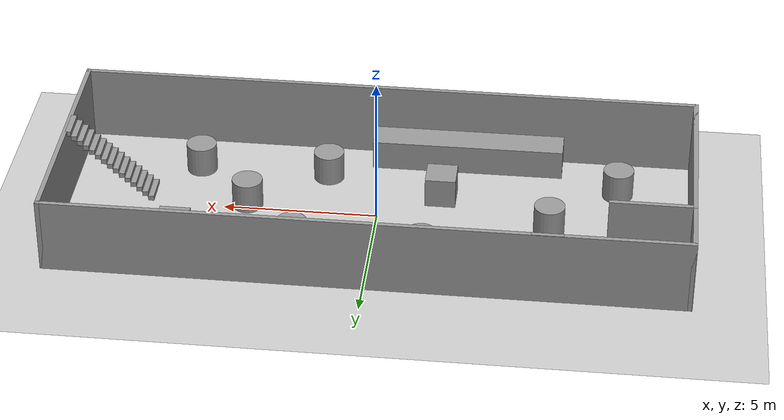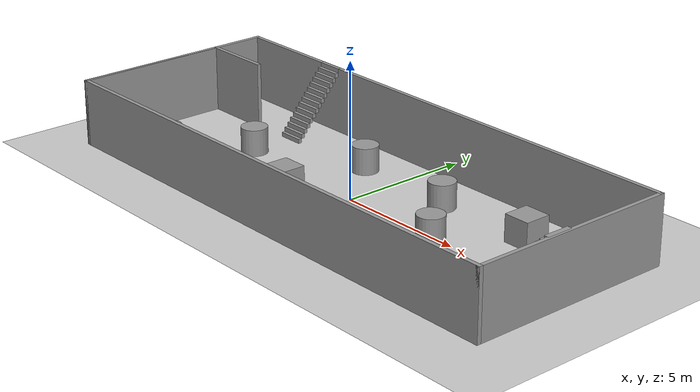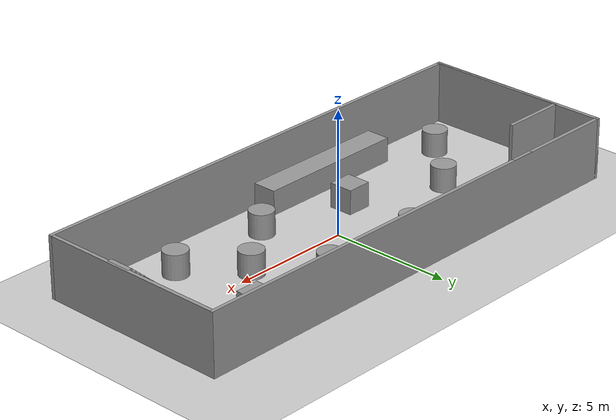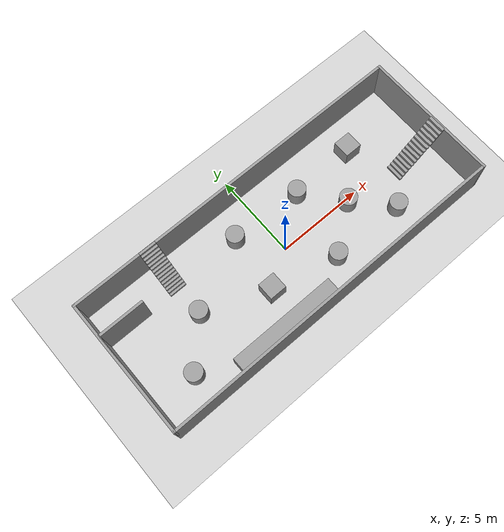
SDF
<sdf version="1.6">
 <world name="default">
  <light name="sun" type="directional">
   <pose>0 0 10 0 -0 0</pose>
   <diffuse>0.8 0.8 0.8 1</diffuse>
   <specular>0.2 0.2 0.2 1</specular>
   <attenuation>
    <range>1000</range>
    <constant>0.9</constant>
    <linear>0.01</linear>
    <quadratic>0.001</quadratic>
   </attenuation>
   <direction>-0.5 0.1 -0.9</direction>
  </light>
  <model name="ground_plane">
   <static>1</static>
   <link name="link">
    <collision name="collision">
     <geometry><plane><normal>0 0 1</normal><size>100 100</size></plane></geometry>
     <surface>
      <contact><collide_bitmask>65535</collide_bitmask></contact>
      <friction><ode><mu>100</mu><mu2>50</mu2></ode></friction>
     </surface>
    </collision>
    <visual name="visual">
     <cast_shadows>0</cast_shadows>
     <geometry><plane><normal>0 0 1</normal><size>100 100</size></plane></geometry>
     <material>
      <script><uri>file://media/materials/scripts/gazebo.material</uri><name>Gazebo/Grey</name></script>
     </material>
    </visual>
   </link>
  </model>
  <gravity>0 0 -9.8</gravity>
  <magnetic_field>6e-06 2.3e-05 -4.2e-05</magnetic_field>
  <atmosphere type="adiabatic"/>
  <physics name="default_physics" default="0" type="ode">
   <max_step_size>0.001</max_step_size>
   <real_time_factor>1</real_time_factor>
   <real_time_update_rate>1000</real_time_update_rate>
  </physics>
  <scene><ambient>0.4 0.4 0.4 1</ambient><background>0.7 0.7 0.7 1</background><shadows>1</shadows></scene>
  <spherical_coordinates>
   <surface_model>EARTH_WGS84</surface_model>
   <latitude_deg>0</latitude_deg>
   <longitude_deg>0</longitude_deg>
   <elevation>0</elevation>
   <heading_deg>0</heading_deg>
  </spherical_coordinates>
  <model name="Untitled3">
   <pose>0.002284 -0.007281 0 0 -0 0</pose>
   <link name="Stairs_0">
    <visual name="Stairs_0_Visual_0">
     <pose>-5.68776 2.00239 0.083333 0 -0 -3.14159</pose>
     <geometry><box><size>1 0.136788 0.166667</size></box></geometry>
     <material>
      <script><uri>file://media/materials/scripts/gazebo.material</uri><name>Gazebo/Grey</name></script>
      <ambient>1 1 1 1</ambient>
     </material>
     <meta><layer>0</layer></meta>
    </visual>
    <collision name="Stairs_0_Collision_0">
     <geometry><box><size>1 0.136788 0.166667</size></box></geometry>
     <pose>-5.68776 2.00239 0.083333 0 -0 -3.14159</pose>
    </collision>
    <visual name="Stairs_0_Visual_1">
     <pose>-5.68776 2.13918 0.25 0 -0 -3.14159</pose>
     <geometry><box><size>1 0.136788 0.166667</size></box></geometry>
     <material>
      <script><uri>file://media/materials/scripts/gazebo.material</uri><name>Gazebo/Grey</name></script>
      <ambient>1 1 1 1</ambient>
     </material>
     <meta><layer>0</layer></meta>
    </visual>
    <collision name="Stairs_0_Collision_1">
     <geometry><box><size>1 0.136788 0.166667</size></box></geometry>
     <pose>-5.68776 2.13918 0.25 0 -0 -3.14159</pose>
    </collision>
    <visual name="Stairs_0_Visual_2">
     <pose>-5.68776 2.27597 0.416667 0 -0 -3.14159</pose>
     <geometry><box><size>1 0.136788 0.166667</size></box></geometry>
     <material>
      <script><uri>file://media/materials/scripts/gazebo.material</uri><name>Gazebo/Grey</name></script>
      <ambient>1 1 1 1</ambient>
     </material>
     <meta><layer>0</layer></meta>
    </visual>
    <collision name="Stairs_0_Collision_2">
     <geometry><box><size>1 0.136788 0.166667</size></box></geometry>
     <pose>-5.68776 2.27597 0.416667 0 -0 -3.14159</pose>
    </collision>
    <visual name="Stairs_0_Visual_3">
     <pose>-5.68776 2.41276 0.583333 0 -0 -3.14159</pose>
     <geometry><box><size>1 0.136788 0.166667</size></box></geometry>
     <material>
      <script><uri>file://media/materials/scripts/gazebo.material</uri><name>Gazebo/Grey</name></script>
      <ambient>1 1 1 1</ambient>
     </material>
     <meta><layer>0</layer></meta>
    </visual>
    <collision name="Stairs_0_Collision_3">
     <geometry><box><size>1 0.136788 0.166667</size></box></geometry>
     <pose>-5.68776 2.41276 0.583333 0 -0 -3.14159</pose>
    </collision>
    <visual name="Stairs_0_Visual_4">
     <pose>-5.68776 2.54954 0.75 0 -0 -3.14159</pose>
     <geometry><box><size>1 0.136788 0.166667</size></box></geometry>
     <material>
      <script><uri>file://media/materials/scripts/gazebo.material</uri><name>Gazebo/Grey</name></script>
      <ambient>1 1 1 1</ambient>
     </material>
     <meta><layer>0</layer></meta>
    </visual>
    <collision name="Stairs_0_Collision_4">
     <geometry><box><size>1 0.136788 0.166667</size></box></geometry>
     <pose>-5.68776 2.54954 0.75 0 -0 -3.14159</pose>
    </collision>
    <visual name="Stairs_0_Visual_5">
     <pose>-5.68776 2.68633 0.916667 0 -0 -3.14159</pose>
     <geometry><box><size>1 0.136788 0.166667</size></box></geometry>
     <material>
      <script><uri>file://media/materials/scripts/gazebo.material</uri><name>Gazebo/Grey</name></script>
      <ambient>1 1 1 1</ambient>
     </material>
     <meta><layer>0</layer></meta>
    </visual>
    <collision name="Stairs_0_Collision_5">
     <geometry><box><size>1 0.136788 0.166667</size></box></geometry>
     <pose>-5.68776 2.68633 0.916667 0 -0 -3.14159</pose>
    </collision>
    <visual name="Stairs_0_Visual_6">
     <pose>-5.68776 2.82312 1.08333 0 -0 -3.14159</pose>
     <geometry><box><size>1 0.136788 0.166667</size></box></geometry>
     <material>
      <script><uri>file://media/materials/scripts/gazebo.material</uri><name>Gazebo/Grey</name></script>
      <ambient>1 1 1 1</ambient>
     </material>
     <meta><layer>0</layer></meta>
    </visual>
    <collision name="Stairs_0_Collision_6">
     <geometry><box><size>1 0.136788 0.166667</size></box></geometry>
     <pose>-5.68776 2.82312 1.08333 0 -0 -3.14159</pose>
    </collision>
    <visual name="Stairs_0_Visual_7">
     <pose>-5.68776 2.95991 1.25 0 -0 -3.14159</pose>
     <geometry><box><size>1 0.136788 0.166667</size></box></geometry>
     <material>
      <script><uri>file://media/materials/scripts/gazebo.material</uri><name>Gazebo/Grey</name></script>
      <ambient>1 1 1 1</ambient>
     </material>
     <meta><layer>0</layer></meta>
    </visual>
    <collision name="Stairs_0_Collision_7">
     <geometry><box><size>1 0.136788 0.166667</size></box></geometry>
     <pose>-5.68776 2.95991 1.25 0 -0 -3.14159</pose>
    </collision>
    <visual name="Stairs_0_Visual_8">
     <pose>-5.68776 3.0967 1.41667 0 -0 -3.14159</pose>
     <geometry><box><size>1 0.136788 0.166667</size></box></geometry>
     <material>
      <script><uri>file://media/materials/scripts/gazebo.material</uri><name>Gazebo/Grey</name></script>
      <ambient>1 1 1 1</ambient>
     </material>
     <meta><layer>0</layer></meta>
    </visual>
    <collision name="Stairs_0_Collision_8">
     <geometry><box><size>1 0.136788 0.166667</size></box></geometry>
     <pose>-5.68776 3.0967 1.41667 0 -0 -3.14159</pose>
    </collision>
    <visual name="Stairs_0_Visual_9">
     <pose>-5.68776 3.23348 1.58333 0 -0 -3.14159</pose>
     <geometry><box><size>1 0.136788 0.166667</size></box></geometry>
     <material>
      <script><uri>file://media/materials/scripts/gazebo.material</uri><name>Gazebo/Grey</name></script>
      <ambient>1 1 1 1</ambient>
     </material>
     <meta><layer>0</layer></meta>
    </visual>
    <collision name="Stairs_0_Collision_9">
     <geometry><box><size>1 0.136788 0.166667</size></box></geometry>
     <pose>-5.68776 3.23348 1.58333 0 -0 -3.14159</pose>
    </collision>
    <visual name="Stairs_0_Visual_10">
     <pose>-5.68776 3.37027 1.75 0 -0 -3.14159</pose>
     <geometry><box><size>1 0.136788 0.166667</size></box></geometry>
     <material>
      <script><uri>file://media/materials/scripts/gazebo.material</uri><name>Gazebo/Grey</name></script>
      <ambient>1 1 1 1</ambient>
     </material>
     <meta><layer>0</layer></meta>
    </visual>
    <collision name="Stairs_0_Collision_10">
     <geometry><box><size>1 0.136788 0.166667</size></box></geometry>
     <pose>-5.68776 3.37027 1.75 0 -0 -3.14159</pose>
    </collision>
    <visual name="Stairs_0_Visual_11">
     <pose>-5.68776 3.50706 1.91667 0 -0 -3.14159</pose>
     <geometry><box><size>1 0.136788 0.166667</size></box></geometry>
     <material>
      <script><uri>file://media/materials/scripts/gazebo.material</uri><name>Gazebo/Grey</name></script>
      <ambient>1 1 1 1</ambient>
     </material>
     <meta><layer>0</layer></meta>
    </visual>
    <collision name="Stairs_0_Collision_11">
     <geometry><box><size>1 0.136788 0.166667</size></box></geometry>
     <pose>-5.68776 3.50706 1.91667 0 -0 -3.14159</pose>
    </collision>
    <visual name="Stairs_0_Visual_12">
     <pose>-5.68776 3.64385 2.08333 0 -0 -3.14159</pose>
     <geometry><box><size>1 0.136788 0.166667</size></box></geometry>
     <material>
      <script><uri>file://media/materials/scripts/gazebo.material</uri><name>Gazebo/Grey</name></script>
      <ambient>1 1 1 1</ambient>
     </material>
     <meta><layer>0</layer></meta>
    </visual>
    <collision name="Stairs_0_Collision_12">
     <geometry><box><size>1 0.136788 0.166667</size></box></geometry>
     <pose>-5.68776 3.64385 2.08333 0 -0 -3.14159</pose>
    </collision>
    <visual name="Stairs_0_Visual_13">
     <pose>-5.68776 3.78064 2.25 0 -0 -3.14159</pose>
     <geometry><box><size>1 0.136788 0.166667</size></box></geometry>
     <material>
      <script><uri>file://media/materials/scripts/gazebo.material</uri><name>Gazebo/Grey</name></script>
      <ambient>1 1 1 1</ambient>
     </material>
     <meta><layer>0</layer></meta>
    </visual>
    <collision name="Stairs_0_Collision_13">
     <geometry><box><size>1 0.136788 0.166667</size></box></geometry>
     <pose>-5.68776 3.78064 2.25 0 -0 -3.14159</pose>
    </collision>
    <visual name="Stairs_0_Visual_14">
     <pose>-5.68776 3.91743 2.41667 0 -0 -3.14159</pose>
     <geometry><box><size>1 0.136788 0.166667</size></box></geometry>
     <material>
      <script><uri>file://media/materials/scripts/gazebo.material</uri><name>Gazebo/Grey</name></script>
      <ambient>1 1 1 1</ambient>
     </material>
     <meta><layer>0</layer></meta>
    </visual>
    <collision name="Stairs_0_Collision_14">
     <geometry><box><size>1 0.136788 0.166667</size></box></geometry>
     <pose>-5.68776 3.91743 2.41667 0 -0 -3.14159</pose>
    </collision>
   </link>
   <link name="Stairs_1">
    <visual name="Stairs_1_Visual_0">
     <pose>7.45218 -0.597571 0.083333 0 -0 1.5708</pose>
     <geometry><box><size>1 0.186693 0.166667</size></box></geometry>
     <material>
      <script><uri>file://media/materials/scripts/gazebo.material</uri><name>Gazebo/Grey</name></script>
      <ambient>1 1 1 1</ambient>
     </material>
     <meta><layer>0</layer></meta>
    </visual>
    <collision name="Stairs_1_Collision_0">
     <geometry><box><size>1 0.186693 0.166667</size></box></geometry>
     <pose>7.45218 -0.597571 0.083333 0 -0 1.5708</pose>
    </collision>
    <visual name="Stairs_1_Visual_1">
     <pose>7.63887 -0.597571 0.25 0 -0 1.5708</pose>
     <geometry><box><size>1 0.186693 0.166667</size></box></geometry>
     <material>
      <script><uri>file://media/materials/scripts/gazebo.material</uri><name>Gazebo/Grey</name></script>
      <ambient>1 1 1 1</ambient>
     </material>
     <meta><layer>0</layer></meta>
    </visual>
    <collision name="Stairs_1_Collision_1">
     <geometry><box><size>1 0.186693 0.166667</size></box></geometry>
     <pose>7.63887 -0.597571 0.25 0 -0 1.5708</pose>
    </collision>
    <visual name="Stairs_1_Visual_2">
     <pose>7.82556 -0.597571 0.416667 0 -0 1.5708</pose>
     <geometry><box><size>1 0.186693 0.166667</size></box></geometry>
     <material>
      <script><uri>file://media/materials/scripts/gazebo.material</uri><name>Gazebo/Grey</name></script>
      <ambient>1 1 1 1</ambient>
     </material>
     <meta><layer>0</layer></meta>
    </visual>
    <collision name="Stairs_1_Collision_2">
     <geometry><box><size>1 0.186693 0.166667</size></box></geometry>
     <pose>7.82556 -0.597571 0.416667 0 -0 1.5708</pose>
    </collision>
    <visual name="Stairs_1_Visual_3">
     <pose>8.01226 -0.597571 0.583333 0 -0 1.5708</pose>
     <geometry><box><size>1 0.186693 0.166667</size></box></geometry>
     <material>
      <script><uri>file://media/materials/scripts/gazebo.material</uri><name>Gazebo/Grey</name></script>
      <ambient>1 1 1 1</ambient>
     </material>
     <meta><layer>0</layer></meta>
    </visual>
    <collision name="Stairs_1_Collision_3">
     <geometry><box><size>1 0.186693 0.166667</size></box></geometry>
     <pose>8.01226 -0.597571 0.583333 0 -0 1.5708</pose>
    </collision>
    <visual name="Stairs_1_Visual_4">
     <pose>8.19895 -0.597571 0.75 0 -0 1.5708</pose>
     <geometry><box><size>1 0.186693 0.166667</size></box></geometry>
     <material>
      <script><uri>file://media/materials/scripts/gazebo.material</uri><name>Gazebo/Grey</name></script>
      <ambient>1 1 1 1</ambient>
     </material>
     <meta><layer>0</layer></meta>
    </visual>
    <collision name="Stairs_1_Collision_4">
     <geometry><box><size>1 0.186693 0.166667</size></box></geometry>
     <pose>8.19895 -0.597571 0.75 0 -0 1.5708</pose>
    </collision>
    <visual name="Stairs_1_Visual_5">
     <pose>8.38564 -0.597571 0.916667 0 -0 1.5708</pose>
     <geometry><box><size>1 0.186693 0.166667</size></box></geometry>
     <material>
      <script><uri>file://media/materials/scripts/gazebo.material</uri><name>Gazebo/Grey</name></script>
      <ambient>1 1 1 1</ambient>
     </material>
     <meta><layer>0</layer></meta>
    </visual>
    <collision name="Stairs_1_Collision_5">
     <geometry><box><size>1 0.186693 0.166667</size></box></geometry>
     <pose>8.38564 -0.597571 0.916667 0 -0 1.5708</pose>
    </collision>
    <visual name="Stairs_1_Visual_6">
     <pose>8.57234 -0.597571 1.08333 0 -0 1.5708</pose>
     <geometry><box><size>1 0.186693 0.166667</size></box></geometry>
     <material>
      <script><uri>file://media/materials/scripts/gazebo.material</uri><name>Gazebo/Grey</name></script>
      <ambient>1 1 1 1</ambient>
     </material>
     <meta><layer>0</layer></meta>
    </visual>
    <collision name="Stairs_1_Collision_6">
     <geometry><box><size>1 0.186693 0.166667</size></box></geometry>
     <pose>8.57234 -0.597571 1.08333 0 -0 1.5708</pose>
    </collision>
    <visual name="Stairs_1_Visual_7">
     <pose>8.75903 -0.597571 1.25 0 -0 1.5708</pose>
     <geometry><box><size>1 0.186693 0.166667</size></box></geometry>
     <material>
      <script><uri>file://media/materials/scripts/gazebo.material</uri><name>Gazebo/Grey</name></script>
      <ambient>1 1 1 1</ambient>
     </material>
     <meta><layer>0</layer></meta>
    </visual>
    <collision name="Stairs_1_Collision_7">
     <geometry><box><size>1 0.186693 0.166667</size></box></geometry>
     <pose>8.75903 -0.597571 1.25 0 -0 1.5708</pose>
    </collision>
    <visual name="Stairs_1_Visual_8">
     <pose>8.94572 -0.597571 1.41667 0 -0 1.5708</pose>
     <geometry><box><size>1 0.186693 0.166667</size></box></geometry>
     <material>
      <script><uri>file://media/materials/scripts/gazebo.material</uri><name>Gazebo/Grey</name></script>
      <ambient>1 1 1 1</ambient>
     </material>
     <meta><layer>0</layer></meta>
    </visual>
    <collision name="Stairs_1_Collision_8">
     <geometry><box><size>1 0.186693 0.166667</size></box></geometry>
     <pose>8.94572 -0.597571 1.41667 0 -0 1.5708</pose>
    </collision>
    <visual name="Stairs_1_Visual_9">
     <pose>9.13242 -0.597571 1.58333 0 -0 1.5708</pose>
     <geometry><box><size>1 0.186693 0.166667</size></box></geometry>
     <material>
      <script><uri>file://media/materials/scripts/gazebo.material</uri><name>Gazebo/Grey</name></script>
      <ambient>1 1 1 1</ambient>
     </material>
     <meta><layer>0</layer></meta>
    </visual>
    <collision name="Stairs_1_Collision_9">
     <geometry><box><size>1 0.186693 0.166667</size></box></geometry>
     <pose>9.13242 -0.597571 1.58333 0 -0 1.5708</pose>
    </collision>
    <visual name="Stairs_1_Visual_10">
     <pose>9.31911 -0.597571 1.75 0 -0 1.5708</pose>
     <geometry><box><size>1 0.186693 0.166667</size></box></geometry>
     <material>
      <script><uri>file://media/materials/scripts/gazebo.material</uri><name>Gazebo/Grey</name></script>
      <ambient>1 1 1 1</ambient>
     </material>
     <meta><layer>0</layer></meta>
    </visual>
    <collision name="Stairs_1_Collision_10">
     <geometry><box><size>1 0.186693 0.166667</size></box></geometry>
     <pose>9.31911 -0.597571 1.75 0 -0 1.5708</pose>
    </collision>
    <visual name="Stairs_1_Visual_11">
     <pose>9.5058 -0.597571 1.91667 0 -0 1.5708</pose>
     <geometry><box><size>1 0.186693 0.166667</size></box></geometry>
     <material>
      <script><uri>file://media/materials/scripts/gazebo.material</uri><name>Gazebo/Grey</name></script>
      <ambient>1 1 1 1</ambient>
     </material>
     <meta><layer>0</layer></meta>
    </visual>
    <collision name="Stairs_1_Collision_11">
     <geometry><box><size>1 0.186693 0.166667</size></box></geometry>
     <pose>9.5058 -0.597571 1.91667 0 -0 1.5708</pose>
    </collision>
    <visual name="Stairs_1_Visual_12">
     <pose>9.6925 -0.597571 2.08333 0 -0 1.5708</pose>
     <geometry><box><size>1 0.186693 0.166667</size></box></geometry>
     <material>
      <script><uri>file://media/materials/scripts/gazebo.material</uri><name>Gazebo/Grey</name></script>
      <ambient>1 1 1 1</ambient>
     </material>
     <meta><layer>0</layer></meta>
    </visual>
    <collision name="Stairs_1_Collision_12">
     <geometry><box><size>1 0.186693 0.166667</size></box></geometry>
     <pose>9.6925 -0.597571 2.08333 0 -0 1.5708</pose>
    </collision>
    <visual name="Stairs_1_Visual_13">
     <pose>9.87919 -0.597571 2.25 0 -0 1.5708</pose>
     <geometry><box><size>1 0.186693 0.166667</size></box></geometry>
     <material>
      <script><uri>file://media/materials/scripts/gazebo.material</uri><name>Gazebo/Grey</name></script>
      <ambient>1 1 1 1</ambient>
     </material>
     <meta><layer>0</layer></meta>
    </visual>
    <collision name="Stairs_1_Collision_13">
     <geometry><box><size>1 0.186693 0.166667</size></box></geometry>
     <pose>9.87919 -0.597571 2.25 0 -0 1.5708</pose>
    </collision>
    <visual name="Stairs_1_Visual_14">
     <pose>10.0659 -0.597571 2.41667 0 -0 1.5708</pose>
     <geometry><box><size>1 0.186693 0.166667</size></box></geometry>
     <material>
      <script><uri>file://media/materials/scripts/gazebo.material</uri><name>Gazebo/Grey</name></script>
      <ambient>1 1 1 1</ambient>
     </material>
     <meta><layer>0</layer></meta>
    </visual>
    <collision name="Stairs_1_Collision_14">
     <geometry><box><size>1 0.186693 0.166667</size></box></geometry>
     <pose>10.0659 -0.597571 2.41667 0 -0 1.5708</pose>
    </collision>
   </link>
   <link name="Wall_0">
    <collision name="Wall_0_Collision">
     <geometry><box><size>20.5 0.15 2.5</size></box></geometry>
     <pose>0 0 1.25 0 -0 0</pose>
    </collision>
    <visual name="Wall_0_Visual">
     <pose>0 0 1.25 0 -0 0</pose>
     <geometry><box><size>20.5 0.15 2.5</size></box></geometry>
     <material>
      <script><uri>file://media/materials/scripts/gazebo.material</uri><name>Gazebo/Grey</name></script>
      <ambient>1 1 1 1</ambient>
     </material>
     <meta><layer>0</layer></meta>
    </visual>
    <pose>0 -3.925 0 0 -0 0</pose>
   </link>
   <link name="Wall_2">
    <collision name="Wall_2_Collision">
     <geometry><box><size>8 0.15 2.5</size></box></geometry>
     <pose>0 0 1.25 0 -0 0</pose>
    </collision>
    <visual name="Wall_2_Visual">
     <pose>0 0 1.25 0 -0 0</pose>
     <geometry><box><size>8 0.15 2.5</size></box></geometry>
     <material>
      <script><uri>file://media/materials/scripts/gazebo.material</uri><name>Gazebo/Grey</name></script>
      <ambient>1 1 1 1</ambient>
     </material>
     <meta><layer>0</layer></meta>
    </visual>
    <pose>-10.175 0 0 0 -0 1.5708</pose>
   </link>
   <link name="Wall_3">
    <collision name="Wall_3_Collision">
     <geometry><box><size>20.5 0.15 2.5</size></box></geometry>
     <pose>0 0 1.25 0 -0 0</pose>
    </collision>
    <visual name="Wall_3_Visual">
     <pose>0 0 1.25 0 -0 0</pose>
     <geometry><box><size>20.5 0.15 2.5</size></box></geometry>
     <material>
      <script><uri>file://media/materials/scripts/gazebo.material</uri><name>Gazebo/Grey</name></script>
      <ambient>1 1 1 1</ambient>
     </material>
     <meta><layer>0</layer></meta>
    </visual>
    <pose>0 3.925 0 0 -0 0</pose>
   </link>
   <link name="Wall_4">
    <collision name="Wall_4_Collision">
     <geometry><box><size>8 0.15 2.5</size></box></geometry>
     <pose>0 0 1.25 0 -0 0</pose>
    </collision>
    <visual name="Wall_4_Visual">
     <pose>0 0 1.25 0 -0 0</pose>
     <geometry><box><size>8 0.15 2.5</size></box></geometry>
     <material>
      <script><uri>file://media/materials/scripts/gazebo.material</uri><name>Gazebo/Grey</name></script>
      <ambient>1 1 1 1</ambient>
     </material>
     <meta><layer>0</layer></meta>
    </visual>
    <pose>10.175 0 0 0 -0 -1.5708</pose>
   </link>
   <link name="Wall_7">
    <collision name="Wall_7_Collision">
     <geometry><box><size>6 0.15 2.5</size></box></geometry>
     <pose>0 0 1.25 0 -0 0</pose>
    </collision>
    <visual name="Wall_7_Visual">
     <pose>0 0 1.25 0 -0 0</pose>
     <geometry><box><size>6 0.15 2.5</size></box></geometry>
     <material>
      <script><uri>file://media/materials/scripts/gazebo.material</uri><name>Gazebo/Grey</name></script>
      <ambient>1 1 1 1</ambient>
     </material>
     <meta><layer>0</layer></meta>
    </visual>
    <pose>-10.175 -1 0 0 -0 1.5708</pose>
   </link>
   <link name="Wall_8">
    <collision name="Wall_8_Collision">
     <geometry><box><size>2.75 0.15 2.5</size></box></geometry>
     <pose>0 0 1.25 0 -0 0</pose>
    </collision>
    <visual name="Wall_8_Visual">
     <pose>0 0 1.25 0 -0 0</pose>
     <geometry><box><size>2.75 0.15 2.5</size></box></geometry>
     <material>
      <script><uri>file://media/materials/scripts/gazebo.material</uri><name>Gazebo/Grey</name></script>
      <ambient>1 1 1 1</ambient>
     </material>
     <meta><layer>0</layer></meta>
    </visual>
    <pose>-8.875 1.925 0 0 -0 0</pose>
   </link>
   <static>1</static>
  </model>
  <model name="unit_cylinder_0">
   <pose>2.50265 1.93513 0.499993 -4e-06 -2e-06 -0</pose>
   <link name="link">
    <inertial>
     <mass>1</mass>
     <inertia><ixx>0.145833</ixx><ixy>0</ixy><ixz>0</ixz><iyy>0.145833</iyy><iyz>0</iyz><izz>0.125</izz></inertia>
    </inertial>
    <collision name="collision">
     <geometry><cylinder><radius>0.5</radius><length>1</length></cylinder></geometry>
    </collision>
    <visual name="visual">
     <geometry><cylinder><radius>0.5</radius><length>1</length></cylinder></geometry>
     <material>
      <script><name>Gazebo/Grey</name><uri>file://media/materials/scripts/gazebo.material</uri></script>
     </material>
    </visual>
   </link>
  </model>
  <model name="unit_cylinder_1">
   <pose>-1.65289 2.11626 0.499996 -2e-06 -0 -0.606172</pose>
   <link name="link">
    <inertial>
     <mass>1</mass>
     <inertia><ixx>0.145833</ixx><ixy>0</ixy><ixz>0</ixz><iyy>0.145833</iyy><iyz>0</iyz><izz>0.125</izz></inertia>
    </inertial>
    <collision name="collision">
     <geometry><cylinder><radius>0.5</radius><length>1</length></cylinder></geometry>
    </collision>
    <visual name="visual">
     <geometry><cylinder><radius>0.5</radius><length>1</length></cylinder></geometry>
     <material>
      <script><name>Gazebo/Grey</name><uri>file://media/materials/scripts/gazebo.material</uri></script>
     </material>
    </visual>
   </link>
  </model>
  <model name="unit_box">
   <pose>-2.74144 -3.35558 0.493977 -0 0.00191 0.000214</pose>
   <link name="link">
    <inertial>
     <mass>1</mass>
     <inertia>
      <ixx>0.166667</ixx>
      <ixy>0</ixy>
      <ixz>0</ixz>
      <iyy>0.166667</iyy>
      <iyz>0</iyz>
      <izz>0.166667</izz>
     </inertia>
    </inertial>
    <collision name="collision"><geometry><box><size>6.31012 1 1</size></box></geometry></collision>
    <visual name="visual">
     <geometry><box><size>6.31012 1 1</size></box></geometry>
     <material>
      <script><name>Gazebo/Grey</name><uri>file://media/materials/scripts/gazebo.material</uri></script>
     </material>
    </visual>
   </link>
  </model>
  <model name="unit_cylinder">
   <pose>-7.77016 -2.06935 0.499998 3e-06 -3e-06 0</pose>
   <link name="link">
    <inertial>
     <mass>1</mass>
     <inertia><ixx>0.145833</ixx><ixy>0</ixy><ixz>0</ixz><iyy>0.145833</iyy><iyz>0</iyz><izz>0.125</izz></inertia>
    </inertial>
    <collision name="collision">
     <geometry><cylinder><radius>0.5</radius><length>1</length></cylinder></geometry>
    </collision>
    <visual name="visual">
     <geometry><cylinder><radius>0.5</radius><length>1</length></cylinder></geometry>
     <material>
      <script><name>Gazebo/Grey</name><uri>file://media/materials/scripts/gazebo.material</uri></script>
     </material>
    </visual>
   </link>
  </model>
  <model name="unit_cylinder_2">
   <pose>-5.62379 0.215487 0.499992 -3e-06 3e-06 0</pose>
   <link name="link">
    <inertial>
     <mass>1</mass>
     <inertia><ixx>0.145833</ixx><ixy>0</ixy><ixz>0</ixz><iyy>0.145833</iyy><iyz>0</iyz><izz>0.125</izz></inertia>
    </inertial>
    <collision name="collision">
     <geometry><cylinder><radius>0.5</radius><length>1</length></cylinder></geometry>
    </collision>
    <visual name="visual">
     <geometry><cylinder><radius>0.5</radius><length>1</length></cylinder></geometry>
     <material>
      <script><name>Gazebo/Grey</name><uri>file://media/materials/scripts/gazebo.material</uri></script>
     </material>
    </visual>
   </link>
  </model>
  <model name="unit_box_0">
   <pose>-2.01044 -1.28327 0.499995 0 -1e-05 0</pose>
   <link name="link">
    <inertial>
     <mass>1</mass>
     <inertia>
      <ixx>0.166667</ixx>
      <ixy>0</ixy>
      <ixz>0</ixz>
      <iyy>0.166667</iyy>
      <iyz>0</iyz>
      <izz>0.166667</izz>
     </inertia>
    </inertial>
    <collision name="collision"><geometry><box><size>1 1 1</size></box></geometry></collision>
    <visual name="visual">
     <geometry><box><size>1 1 1</size></box></geometry>
     <material>
      <script><name>Gazebo/Grey</name><uri>file://media/materials/scripts/gazebo.material</uri></script>
     </material>
    </visual>
   </link>
  </model>
  <model name="unit_cylinder_3">
   <pose>1.80486 -2.12421 0.499998 3e-06 4e-06 -0</pose>
   <link name="link">
    <inertial>
     <mass>1</mass>
     <inertia><ixx>0.145833</ixx><ixy>0</ixy><ixz>0</ixz><iyy>0.145833</iyy><iyz>0</iyz><izz>0.125</izz></inertia>
    </inertial>
    <collision name="collision">
     <geometry><cylinder><radius>0.5</radius><length>1</length></cylinder></geometry>
    </collision>
    <visual name="visual">
     <geometry><cylinder><radius>0.5</radius><length>1</length></cylinder></geometry>
     <material>
      <script><name>Gazebo/Grey</name><uri>file://media/materials/scripts/gazebo.material</uri></script>
     </material>
    </visual>
   </link>
  </model>
  <model name="unit_cylinder_4">
   <pose>6.08728 -2.17002 0.499998 3e-06 -4e-06 0</pose>
   <link name="link">
    <inertial>
     <mass>1</mass>
     <inertia><ixx>0.145833</ixx><ixy>0</ixy><ixz>0</ixz><iyy>0.145833</iyy><iyz>0</iyz><izz>0.125</izz></inertia>
    </inertial>
    <collision name="collision">
     <geometry><cylinder><radius>0.5</radius><length>1</length></cylinder></geometry>
    </collision>
    <visual name="visual">
     <geometry><cylinder><radius>0.5</radius><length>1</length></cylinder></geometry>
     <material>
      <script><name>Gazebo/Grey</name><uri>file://media/materials/scripts/gazebo.material</uri></script>
     </material>
    </visual>
   </link>
  </model>
  <model name="unit_box_1">
   <pose>6.30709 2.08388 0.499995 0 -1e-05 0</pose>
   <link name="link">
    <inertial>
     <mass>1</mass>
     <inertia>
      <ixx>0.166667</ixx>
      <ixy>0</ixy>
      <ixz>0</ixz>
      <iyy>0.166667</iyy>
      <iyz>0</iyz>
      <izz>0.166667</izz>
     </inertia>
    </inertial>
    <collision name="collision"><geometry><box><size>1 1 1</size></box></geometry></collision>
    <visual name="visual">
     <geometry><box><size>1 1 1</size></box></geometry>
     <material>
      <script><name>Gazebo/Grey</name><uri>file://media/materials/scripts/gazebo.material</uri></script>
     </material>
    </visual>
   </link>
  </model>
  <model name="unit_cylinder_5">
   <pose>4.25614 -0.226912 0.499992 0 -0 0</pose>
   <link name="link">
    <inertial>
     <mass>1</mass>
     <inertia><ixx>0.145833</ixx><ixy>0</ixy><ixz>0</ixz><iyy>0.145833</iyy><iyz>0</iyz><izz>0.125</izz></inertia>
    </inertial>
    <collision name="collision">
     <geometry><cylinder><radius>0.5</radius><length>1</length></cylinder></geometry>
    </collision>
    <visual name="visual">
     <geometry><cylinder><radius>0.5</radius><length>1</length></cylinder></geometry>
     <material>
      <script><name>Gazebo/Grey</name><uri>file://media/materials/scripts/gazebo.material</uri></script>
     </material>
    </visual>
   </link>
  </model>
 </world>
</sdf>
